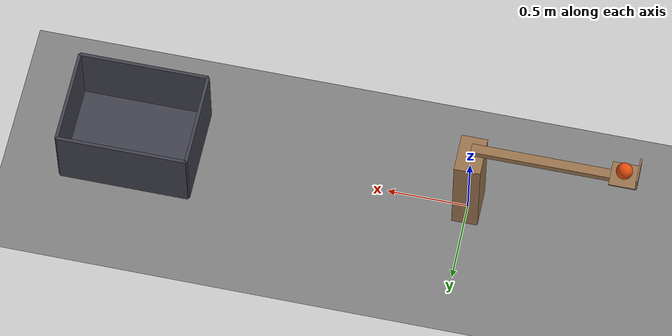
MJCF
<mujoco model="catapult_into_a_bucket">
  <compiler angle="radian"/>
  <option timestep="0.002"/>
  <worldbody>
    <geom name="floor" type="plane" size="8 8 0.1" friction="0.8 0.005 0.002"/>
    <geom name="catapult_stand" type="box" pos="0 0 0.32" size="0.08 0.12 0.32" friction="0.3 0.005 0.0001" solref="0.01 1" rgba="0.6 0.45 0.3 1"/>
    <body name="catapult" pos="0 0 0.7">
      <joint name="catapult_hinge" type="hinge" pos="0 0 0" axis="0 1 0" limited="true" range="0 0.785398" stiffness="3.6" springref="1.74533" damping="0.05" armature="0.01"/>
      <geom name="catapult_arm" type="box" pos="-0.5 0 0" size="0.5 0.03 0.02" mass="0.25" friction="0.3 0.005 0.0001" solref="0.01 1" rgba="0.6 0.45 0.3 1"/>
      <geom name="catapult_scoop_base" type="box" pos="-0.92 0 0.025" size="0.08 0.08 0.005" mass="0.02" friction="0.3 0.005 0.0001" solref="0.01 1" rgba="0.6 0.45 0.3 1"/>
      <geom name="catapult_scoop_back" type="box" pos="-1.005 0 0.07" size="0.005 0.08 0.05" mass="0.01" friction="0.3 0.005 0.0001" solref="0.01 1" rgba="0.6 0.45 0.3 1"/>
    </body>
    <body name="ball" pos="-0.92 0 0.78">
      <freejoint/>
      <geom name="ball" type="sphere" pos="0 0 0" size="0.05" mass="0.1" condim="6" friction="0.3 0.01 0.004" solref="0.01 1" rgba="0.9 0.3 0.05 1"/>
    </body>
    <body name="bucket">
      <geom name="bucket_base" type="box" pos="2.08 0 0.01" size="0.4 0.3 0.01" friction="0.9 0.02 0.01" solref="0.01 1" rgba="0.25 0.25 0.3 1"/>
      <geom name="bucket_near_wall" type="box" pos="1.68 0 0.225" size="0.01 0.3 0.225" friction="0.9 0.02 0.01" solref="0.01 1" rgba="0.25 0.25 0.3 1"/>
      <geom name="bucket_far_wall" type="box" pos="2.48 0 0.225" size="0.01 0.3 0.225" friction="0.9 0.02 0.01" solref="0.01 1" rgba="0.25 0.25 0.3 1"/>
      <geom name="bucket_left_wall" type="box" pos="2.08 0.3 0.225" size="0.4 0.01 0.225" friction="0.9 0.02 0.01" solref="0.01 1" rgba="0.25 0.25 0.3 1"/>
      <geom name="bucket_right_wall" type="box" pos="2.08 -0.3 0.225" size="0.4 0.01 0.225" friction="0.9 0.02 0.01" solref="0.01 1" rgba="0.25 0.25 0.3 1"/>
    </body>
  </worldbody>
  <keyframe>
    <key name="start" qpos="0 -0.92 0 0.78 1 0 0 0" qvel="0 0 0 0 0 0 0"/>
  </keyframe>
</mujoco>
